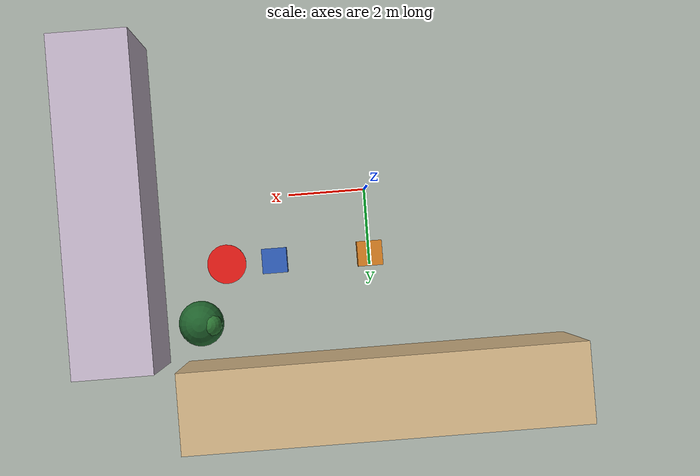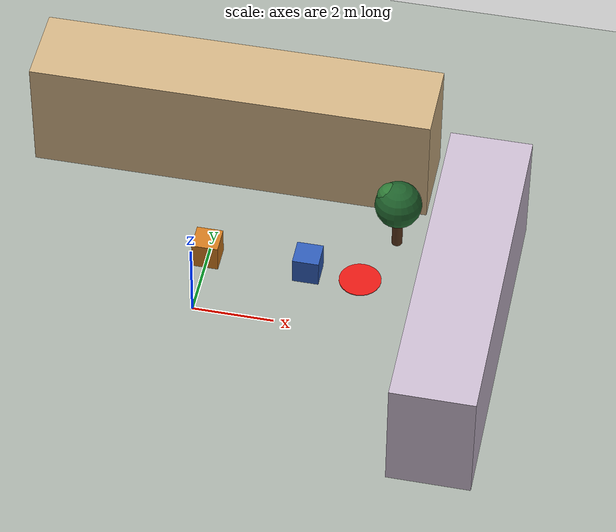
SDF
<sdf version="1.9">
 <world name="campus_world">
  <model name="ground">
   <static>true</static>
   <link name="ground_link">
    <collision name="ground_collision">
     <geometry><plane><normal>0 0 1</normal><size>100 100</size></plane></geometry>
    </collision>
    <visual name="ground_visual">
     <geometry><plane><normal>0 0 1</normal><size>100 100</size></plane></geometry>
     <material><diffuse>0.66 0.69 0.66 1</diffuse></material>
    </visual>
   </link>
  </model>
  <model name="finish_marker">
   <static>true</static>
   <pose>3.8 1.7 0.042 0 0 0</pose>
   <link name="marker_link">
    <visual name="red_finish_pad">
     <geometry><cylinder><radius>0.52</radius><length>0.02</length></cylinder></geometry>
     <material><diffuse>0.90 0.10 0.08 1</diffuse></material>
    </visual>
   </link>
  </model>
  <model name="tree_north_east">
   <static>true</static>
   <pose>4.45 3.15 0 0 0 0</pose>
   <link name="tree">
    <collision name="trunk_collision">
     <pose>0 0 0.43 0 0 0</pose>
     <geometry><cylinder><radius>0.13</radius><length>0.86</length></cylinder></geometry>
    </collision>
    <visual name="trunk">
     <pose>0 0 0.43 0 0 0</pose>
     <geometry><cylinder><radius>0.13</radius><length>0.86</length></cylinder></geometry>
     <material><diffuse>0.34 0.20 0.10 1</diffuse></material>
    </visual>
    <visual name="canopy">
     <pose>0 0 1.34 0 0 0</pose>
     <geometry><sphere><radius>0.58</radius></sphere></geometry>
     <material><diffuse>0.12 0.38 0.17 1</diffuse></material>
    </visual>
    <visual name="canopy_highlight">
     <pose>-0.20 0.03 1.55 0 0 0</pose>
     <geometry><sphere><radius>0.34</radius></sphere></geometry>
     <material><diffuse>0.18 0.48 0.21 1</diffuse></material>
    </visual>
   </link>
  </model>
  <model name="north_academic_block">
   <static>true</static>
   <pose>0 5.2 1.5 0 0 0</pose>
   <link name="body">
    <collision name="collision"><geometry><box><size>10 2 3</size></box></geometry></collision>
    <visual name="visual">
     <geometry><box><size>10 2 3</size></box></geometry>
     <material><diffuse>0.82 0.70 0.52 1</diffuse></material>
    </visual>
   </link>
  </model>
  <model name="east_hostel">
   <static>true</static>
   <pose>6.5 0 1.5 0 0 0</pose>
   <link name="body">
    <collision name="collision"><geometry><box><size>2 8.4 3</size></box></geometry></collision>
    <visual name="visual">
     <geometry><box><size>2 8.4 3</size></box></geometry>
     <material><diffuse>0.79 0.73 0.81 1</diffuse></material>
    </visual>
   </link>
  </model>
  <model name="obstacle_block_2">
   <static>true</static>
   <pose>0 1.70 0.35 0 0 0</pose>
   <link name="body">
    <collision name="collision"><geometry><box><size>0.65 0.65 0.70</size></box></geometry></collision>
    <visual name="visual">
     <geometry><box><size>0.65 0.65 0.70</size></box></geometry>
     <material><diffuse>0.82 0.48 0.12 1</diffuse></material>
    </visual>
   </link>
  </model>
  <model name="obstacle_block_3">
   <static>true</static>
   <pose>2.5 1.70 0.35 0 0 0</pose>
   <link name="body">
    <collision name="collision"><geometry><box><size>0.65 0.65 0.70</size></box></geometry></collision>
    <visual name="visual">
     <geometry><box><size>0.65 0.65 0.70</size></box></geometry>
     <material><diffuse>0.18 0.36 0.72 1</diffuse></material>
    </visual>
   </link>
  </model>
 </world>
</sdf>
